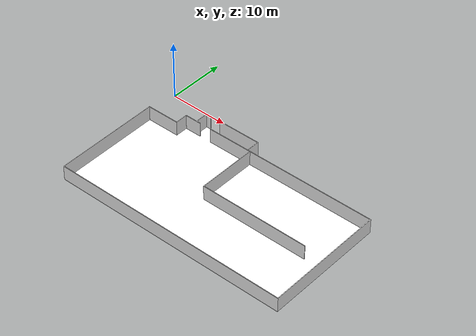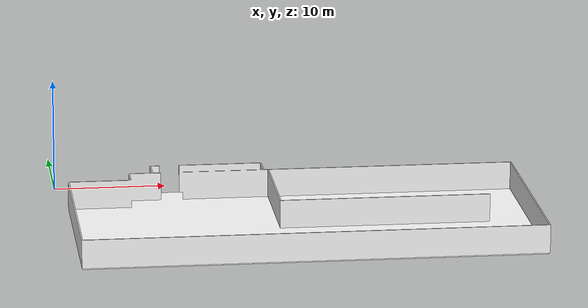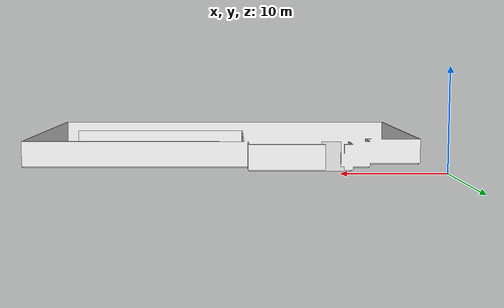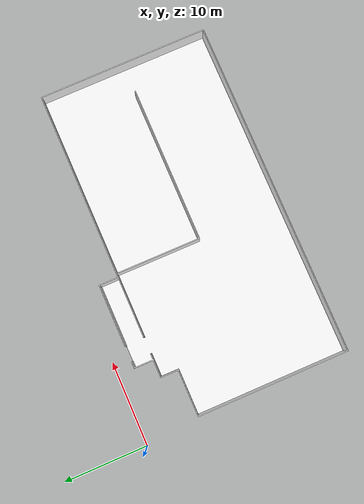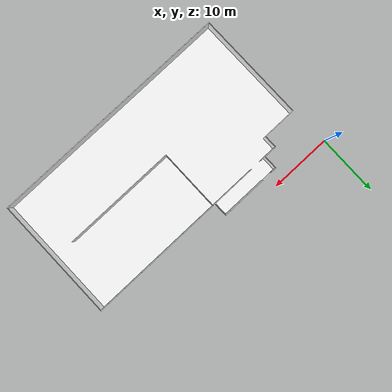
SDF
<?xml version='1.0' encoding='utf-8'?>
<sdf version="1.7">
  <model name="factory_L1">
    <static>true</static>
    <link name="floor_1">
      <visual name="visual">
        <geometry>
          <mesh>
            <uri>model://factory_L1/meshes/floor_1.obj</uri>
          </mesh>
        </geometry>
        <material>
          <diffuse>1.0 1.0 1.0</diffuse>
          <specular>0.1 0.1 0.1</specular>
          <pbr>
            <metal>
              <metalness>0.0</metalness>
              <albedo_map>model://factory_L1/meshes/concrete2.png</albedo_map>
            </metal>
          </pbr>
          <script>
            <uri>model://factory_L1/meshes/</uri>
            <name>floor_1_Diffuse</name>
          </script>
        </material>
      </visual>
      <collision name="collision">
        <geometry>
          <mesh>
            <uri>model://factory_L1/meshes/floor_1.obj</uri>
          </mesh>
        </geometry>
        <surface>
          <contact>
            <collide_bitmask>0x01</collide_bitmask>
          </contact>
        </surface>
      </collision>
    </link>
    <link name="wall_1">
      <visual name="wall_1">
        <geometry>
          <mesh>
            <uri>model://factory_L1/meshes/wall_1.obj</uri>
          </mesh>
        </geometry>
        <transparency>0.0</transparency>
        <material>
          <diffuse>1.0 1.0 1.0</diffuse>
          <specular>0.1 0.1 0.1</specular>
          <pbr>
            <metal>
              <metalness>0.0</metalness>
              <albedo_map>model://factory_L1/meshes/default.png</albedo_map>
            </metal>
          </pbr>
          <script>
            <uri>model://factory_L1/meshes/</uri>
            <name>wall_1_Diffuse</name>
          </script>
        </material>
      </visual>
      <collision name="collision">
        <geometry>
          <mesh>
            <uri>model://factory_L1/meshes/wall_1.obj</uri>
          </mesh>
        </geometry>
        <surface>
          <contact>
            <collide_bitmask>0x01</collide_bitmask>
          </contact>
        </surface>
      </collision>
      <pose>0.8579493797601323 -24.564239278019812 0 0 0 0</pose>
    </link>
    <link name="wall_2">
      <visual name="wall_2">
        <geometry>
          <mesh>
            <uri>model://factory_L1/meshes/wall_2.obj</uri>
          </mesh>
        </geometry>
        <transparency>0.0</transparency>
        <material>
          <diffuse>1.0 1.0 1.0</diffuse>
          <specular>0.1 0.1 0.1</specular>
          <pbr>
            <metal>
              <metalness>0.0</metalness>
              <albedo_map>model://factory_L1/meshes/default.png</albedo_map>
            </metal>
          </pbr>
          <script>
            <uri>model://factory_L1/meshes/</uri>
            <name>wall_2_Diffuse</name>
          </script>
        </material>
      </visual>
      <collision name="collision">
        <geometry>
          <mesh>
            <uri>model://factory_L1/meshes/wall_2.obj</uri>
          </mesh>
        </geometry>
        <surface>
          <contact>
            <collide_bitmask>0x01</collide_bitmask>
          </contact>
        </surface>
      </collision>
      <pose>18.81997647929321 -14.547848963419993 0 0 0 0</pose>
    </link>
  </model>
</sdf>
